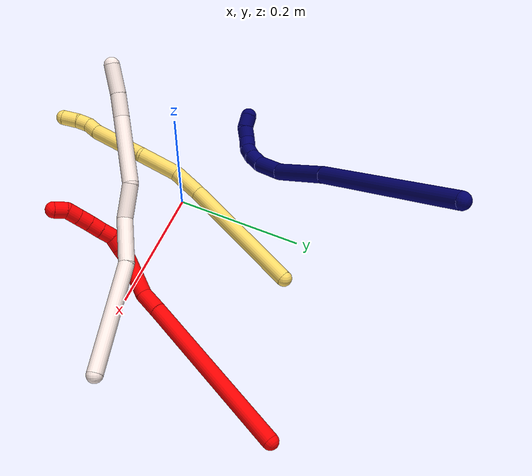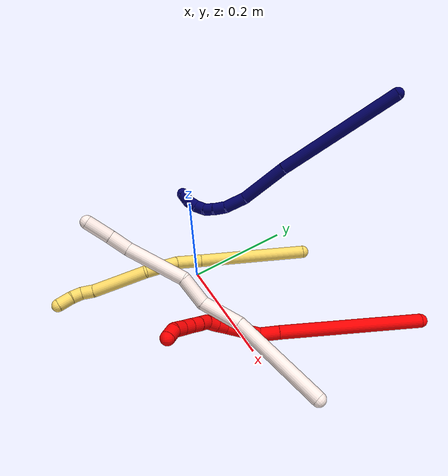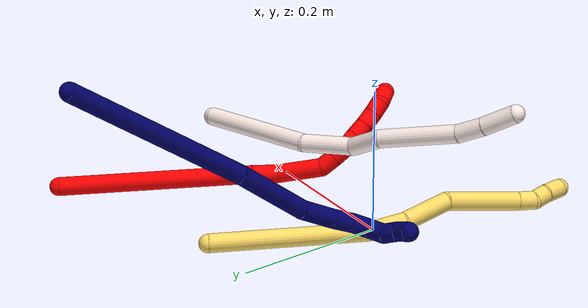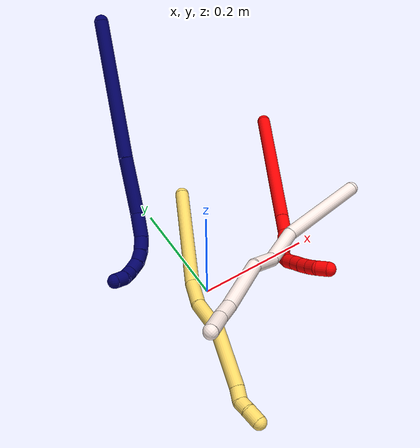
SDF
<sdf version="1.7">
 <world name="default">
  <model name="2">
   <static>0</static>
   <link name="2">
    <collision name="collision-cylinder-e_1_1_4">
     <pose>0.002531 0.002678 -0.130263 -3.12104 0.019425 -1.51424</pose>
     <geometry><cylinder><radius>0.0125</radius><length>0.260631</length></cylinder></geometry>
     <surface>
      <friction><ode><mu>1.16</mu><mu2>1.16</mu2><slip1>0</slip1><slip2>0</slip2></ode></friction>
      <contact><ode><kp>1e+06</kp><kd>1</kd><max_vel>0</max_vel><min_depth>0.001</min_depth></ode></contact>
     </surface>
    </collision>
    <visual name="visual-cylinder-e_1_1_4">
     <pose>0.002531 0.002678 -0.130263 -3.12104 0.019425 -1.51424</pose>
     <geometry><cylinder><radius>0.0125</radius><length>0.260631</length></cylinder></geometry>
     <material><ambient>1 0 0 1</ambient></material>
    </visual>
    <collision name="collision-cylinder-e_2_4_5">
     <pose>0.006159 0.005973 -0.278099 -3.10647 0.062278 -2.11487</pose>
     <geometry><cylinder><radius>0.0125</radius><length>0.035234</length></cylinder></geometry>
     <surface>
      <friction><ode><mu>1.16</mu><mu2>1.16</mu2><slip1>0</slip1><slip2>0</slip2></ode></friction>
      <contact><ode><kp>1e+06</kp><kd>1</kd><max_vel>0</max_vel><min_depth>0.001</min_depth></ode></contact>
     </surface>
    </collision>
    <visual name="visual-cylinder-e_2_4_5">
     <pose>0.006159 0.005973 -0.278099 -3.10647 0.062278 -2.11487</pose>
     <geometry><cylinder><radius>0.0125</radius><length>0.035234</length></cylinder></geometry>
     <material><ambient>1 0 0 1</ambient></material>
    </visual>
    <collision name="collision-cylinder-e_3_5_6">
     <pose>-0.001226 0.010085 -0.324978 -3.02292 -0.279804 2.34318</pose>
     <geometry><cylinder><radius>0.0125</radius><length>0.061418</length></cylinder></geometry>
     <surface>
      <friction><ode><mu>1.16</mu><mu2>1.16</mu2><slip1>0</slip1><slip2>0</slip2></ode></friction>
      <contact><ode><kp>1e+06</kp><kd>1</kd><max_vel>0</max_vel><min_depth>0.001</min_depth></ode></contact>
     </surface>
    </collision>
    <visual name="visual-cylinder-e_3_5_6">
     <pose>-0.001226 0.010085 -0.324978 -3.02292 -0.279804 2.34318</pose>
     <geometry><cylinder><radius>0.0125</radius><length>0.061418</length></cylinder></geometry>
     <material><ambient>1 0 0 1</ambient></material>
    </visual>
    <collision name="collision-cylinder-e_4_6_7">
     <pose>-0.014864 0.009798 -0.363417 2.74897 -0.480982 -1.77883</pose>
     <geometry><cylinder><radius>0.0125</radius><length>0.022296</length></cylinder></geometry>
     <surface>
      <friction><ode><mu>1.16</mu><mu2>1.16</mu2><slip1>0</slip1><slip2>0</slip2></ode></friction>
      <contact><ode><kp>1e+06</kp><kd>1</kd><max_vel>0</max_vel><min_depth>0.001</min_depth></ode></contact>
     </surface>
    </collision>
    <visual name="visual-cylinder-e_4_6_7">
     <pose>-0.014864 0.009798 -0.363417 2.74897 -0.480982 -1.77883</pose>
     <geometry><cylinder><radius>0.0125</radius><length>0.022296</length></cylinder></geometry>
     <material><ambient>1 0 0 1</ambient></material>
    </visual>
    <collision name="collision-cylinder-e_5_7_8">
     <pose>-0.025382 0.002486 -0.380393 2.71874 -0.557222 -1.85417</pose>
     <geometry><cylinder><radius>0.0125</radius><length>0.020273</length></cylinder></geometry>
     <surface>
      <friction><ode><mu>1.16</mu><mu2>1.16</mu2><slip1>0</slip1><slip2>0</slip2></ode></friction>
      <contact><ode><kp>1e+06</kp><kd>1</kd><max_vel>0</max_vel><min_depth>0.001</min_depth></ode></contact>
     </surface>
    </collision>
    <visual name="visual-cylinder-e_5_7_8">
     <pose>-0.025382 0.002486 -0.380393 2.71874 -0.557222 -1.85417</pose>
     <geometry><cylinder><radius>0.0125</radius><length>0.020273</length></cylinder></geometry>
     <material><ambient>1 0 0 1</ambient></material>
    </visual>
    <collision name="collision-cylinder-e_6_8_9">
     <pose>-0.033017 -0.00798 -0.395104 2.35109 -0.22893 -0.537782</pose>
     <geometry><cylinder><radius>0.0125</radius><length>0.020042</length></cylinder></geometry>
     <surface>
      <friction><ode><mu>1.16</mu><mu2>1.16</mu2><slip1>0</slip1><slip2>0</slip2></ode></friction>
      <contact><ode><kp>1e+06</kp><kd>1</kd><max_vel>0</max_vel><min_depth>0.001</min_depth></ode></contact>
     </surface>
    </collision>
    <visual name="visual-cylinder-e_6_8_9">
     <pose>-0.033017 -0.00798 -0.395104 2.35109 -0.22893 -0.537782</pose>
     <geometry><cylinder><radius>0.0125</radius><length>0.020042</length></cylinder></geometry>
     <material><ambient>1 0 0 1</ambient></material>
    </visual>
    <collision name="collision-cylinder-e_7_9_10">
     <pose>-0.037722 -0.021402 -0.409239 2.41315 -0.2446 -0.62378</pose>
     <geometry><cylinder><radius>0.0125</radius><length>0.020082</length></cylinder></geometry>
     <surface>
      <friction><ode><mu>1.16</mu><mu2>1.16</mu2><slip1>0</slip1><slip2>0</slip2></ode></friction>
      <contact><ode><kp>1e+06</kp><kd>1</kd><max_vel>0</max_vel><min_depth>0.001</min_depth></ode></contact>
     </surface>
    </collision>
    <visual name="visual-cylinder-e_7_9_10">
     <pose>-0.037722 -0.021402 -0.409239 2.41315 -0.2446 -0.62378</pose>
     <geometry><cylinder><radius>0.0125</radius><length>0.020082</length></cylinder></geometry>
     <material><ambient>1 0 0 1</ambient></material>
    </visual>
    <collision name="collision-cylinder-e_8_10_11">
     <pose>-0.042613 -0.034855 -0.423259 2.34034 -0.248255 -0.572974</pose>
     <geometry><cylinder><radius>0.0125</radius><length>0.020016</length></cylinder></geometry>
     <surface>
      <friction><ode><mu>1.16</mu><mu2>1.16</mu2><slip1>0</slip1><slip2>0</slip2></ode></friction>
      <contact><ode><kp>1e+06</kp><kd>1</kd><max_vel>0</max_vel><min_depth>0.001</min_depth></ode></contact>
     </surface>
    </collision>
    <visual name="visual-cylinder-e_8_10_11">
     <pose>-0.042613 -0.034855 -0.423259 2.34034 -0.248255 -0.572974</pose>
     <geometry><cylinder><radius>0.0125</radius><length>0.020016</length></cylinder></geometry>
     <material><ambient>1 0 0 1</ambient></material>
    </visual>
    <collision name="collision-cylinder-e_9_11_12">
     <pose>-0.047954 -0.049031 -0.436318 2.28971 -0.292216 -0.627262</pose>
     <geometry><cylinder><radius>0.0125</radius><length>0.020008</length></cylinder></geometry>
     <surface>
      <friction><ode><mu>1.16</mu><mu2>1.16</mu2><slip1>0</slip1><slip2>0</slip2></ode></friction>
      <contact><ode><kp>1e+06</kp><kd>1</kd><max_vel>0</max_vel><min_depth>0.001</min_depth></ode></contact>
     </surface>
    </collision>
    <visual name="visual-cylinder-e_9_11_12">
     <pose>-0.047954 -0.049031 -0.436318 2.28971 -0.292216 -0.627262</pose>
     <geometry><cylinder><radius>0.0125</radius><length>0.020008</length></cylinder></geometry>
     <material><ambient>1 0 0 1</ambient></material>
    </visual>
    <collision name="collision-cylinder-e_10_12_2">
     <pose>-0.049459 -0.065067 -0.447121 2.04166 0.138149 0.224753</pose>
     <geometry><cylinder><radius>0.0125</radius><length>0.02</length></cylinder></geometry>
     <surface>
      <friction><ode><mu>1.16</mu><mu2>1.16</mu2><slip1>0</slip1><slip2>0</slip2></ode></friction>
      <contact><ode><kp>1e+06</kp><kd>1</kd><max_vel>0</max_vel><min_depth>0.001</min_depth></ode></contact>
     </surface>
    </collision>
    <visual name="visual-cylinder-e_10_12_2">
     <pose>-0.049459 -0.065067 -0.447121 2.04166 0.138149 0.224753</pose>
     <geometry><cylinder><radius>0.0125</radius><length>0.02</length></cylinder></geometry>
     <material><ambient>1 0 0 1</ambient></material>
    </visual>
    <collision name="collision-sphere-2">
     <pose>-0.048082 -0.073894 -0.451614 0 -0 0</pose>
     <geometry><sphere><radius>0.0125</radius></sphere></geometry>
     <surface>
      <friction><ode><mu>1.16</mu><mu2>1.16</mu2><slip1>0</slip1><slip2>0</slip2></ode></friction>
      <contact><ode><kp>1e+06</kp><kd>1</kd><max_vel>0</max_vel><min_depth>0.001</min_depth></ode></contact>
     </surface>
    </collision>
    <visual name="visual-sphere-2">
     <pose>-0.048082 -0.073894 -0.451614 0 -0 0</pose>
     <geometry><sphere><radius>0.0125</radius></sphere></geometry>
     <material><ambient>1 0 0 1</ambient></material>
    </visual>
    <collision name="collision-sphere-12">
     <pose>-0.050836 -0.05624 -0.442627 0 -0 0</pose>
     <geometry><sphere><radius>0.0125</radius></sphere></geometry>
     <surface>
      <friction><ode><mu>1.16</mu><mu2>1.16</mu2><slip1>0</slip1><slip2>0</slip2></ode></friction>
      <contact><ode><kp>1e+06</kp><kd>1</kd><max_vel>0</max_vel><min_depth>0.001</min_depth></ode></contact>
     </surface>
    </collision>
    <visual name="visual-sphere-12">
     <pose>-0.050836 -0.05624 -0.442627 0 -0 0</pose>
     <geometry><sphere><radius>0.0125</radius></sphere></geometry>
     <material><ambient>1 0 0 1</ambient></material>
    </visual>
    <collision name="collision-sphere-11">
     <pose>-0.045072 -0.041822 -0.430009 0 -0 0</pose>
     <geometry><sphere><radius>0.0125</radius></sphere></geometry>
     <surface>
      <friction><ode><mu>1.16</mu><mu2>1.16</mu2><slip1>0</slip1><slip2>0</slip2></ode></friction>
      <contact><ode><kp>1e+06</kp><kd>1</kd><max_vel>0</max_vel><min_depth>0.001</min_depth></ode></contact>
     </surface>
    </collision>
    <visual name="visual-sphere-11">
     <pose>-0.045072 -0.041822 -0.430009 0 -0 0</pose>
     <geometry><sphere><radius>0.0125</radius></sphere></geometry>
     <material><ambient>1 0 0 1</ambient></material>
    </visual>
    <collision name="collision-sphere-10">
     <pose>-0.040154 -0.027887 -0.416509 0 -0 0</pose>
     <geometry><sphere><radius>0.0125</radius></sphere></geometry>
     <surface>
      <friction><ode><mu>1.16</mu><mu2>1.16</mu2><slip1>0</slip1><slip2>0</slip2></ode></friction>
      <contact><ode><kp>1e+06</kp><kd>1</kd><max_vel>0</max_vel><min_depth>0.001</min_depth></ode></contact>
     </surface>
    </collision>
    <visual name="visual-sphere-10">
     <pose>-0.040154 -0.027887 -0.416509 0 -0 0</pose>
     <geometry><sphere><radius>0.0125</radius></sphere></geometry>
     <material><ambient>1 0 0 1</ambient></material>
    </visual>
    <collision name="collision-sphere-9">
     <pose>-0.035291 -0.014916 -0.40197 0 -0 0</pose>
     <geometry><sphere><radius>0.0125</radius></sphere></geometry>
     <surface>
      <friction><ode><mu>1.16</mu><mu2>1.16</mu2><slip1>0</slip1><slip2>0</slip2></ode></friction>
      <contact><ode><kp>1e+06</kp><kd>1</kd><max_vel>0</max_vel><min_depth>0.001</min_depth></ode></contact>
     </surface>
    </collision>
    <visual name="visual-sphere-9">
     <pose>-0.035291 -0.014916 -0.40197 0 -0 0</pose>
     <geometry><sphere><radius>0.0125</radius></sphere></geometry>
     <material><ambient>1 0 0 1</ambient></material>
    </visual>
    <collision name="collision-sphere-4">
     <pose>0.005062 0.005356 -0.260527 0 -0 0</pose>
     <geometry><sphere><radius>0.0125</radius></sphere></geometry>
     <surface>
      <friction><ode><mu>1.16</mu><mu2>1.16</mu2><slip1>0</slip1><slip2>0</slip2></ode></friction>
      <contact><ode><kp>1e+06</kp><kd>1</kd><max_vel>0</max_vel><min_depth>0.001</min_depth></ode></contact>
     </surface>
    </collision>
    <visual name="visual-sphere-4">
     <pose>0.005062 0.005356 -0.260527 0 -0 0</pose>
     <geometry><sphere><radius>0.0125</radius></sphere></geometry>
     <material><ambient>1 0 0 1</ambient></material>
    </visual>
    <collision name="collision-sphere-1">
     <geometry><sphere><radius>0.0125</radius></sphere></geometry>
     <surface>
      <friction><ode><mu>1.16</mu><mu2>1.16</mu2><slip1>0</slip1><slip2>0</slip2></ode></friction>
      <contact><ode><kp>1e+06</kp><kd>1</kd><max_vel>0</max_vel><min_depth>0.001</min_depth></ode></contact>
     </surface>
    </collision>
    <visual name="visual-sphere-1">
     <geometry><sphere><radius>0.0125</radius></sphere></geometry>
     <material><ambient>1 0 0 1</ambient></material>
    </visual>
    <collision name="collision-sphere-8">
     <pose>-0.030743 -0.001044 -0.388238 0 -0 0</pose>
     <geometry><sphere><radius>0.0125</radius></sphere></geometry>
     <surface>
      <friction><ode><mu>1.16</mu><mu2>1.16</mu2><slip1>0</slip1><slip2>0</slip2></ode></friction>
      <contact><ode><kp>1e+06</kp><kd>1</kd><max_vel>0</max_vel><min_depth>0.001</min_depth></ode></contact>
     </surface>
    </collision>
    <visual name="visual-sphere-8">
     <pose>-0.030743 -0.001044 -0.388238 0 -0 0</pose>
     <geometry><sphere><radius>0.0125</radius></sphere></geometry>
     <material><ambient>1 0 0 1</ambient></material>
    </visual>
    <collision name="collision-sphere-5">
     <pose>0.007255 0.006591 -0.295671 0 -0 0</pose>
     <geometry><sphere><radius>0.0125</radius></sphere></geometry>
     <surface>
      <friction><ode><mu>1.16</mu><mu2>1.16</mu2><slip1>0</slip1><slip2>0</slip2></ode></friction>
      <contact><ode><kp>1e+06</kp><kd>1</kd><max_vel>0</max_vel><min_depth>0.001</min_depth></ode></contact>
     </surface>
    </collision>
    <visual name="visual-sphere-5">
     <pose>0.007255 0.006591 -0.295671 0 -0 0</pose>
     <geometry><sphere><radius>0.0125</radius></sphere></geometry>
     <material><ambient>1 0 0 1</ambient></material>
    </visual>
    <collision name="collision-sphere-6">
     <pose>-0.009706 0.01358 -0.354285 0 -0 0</pose>
     <geometry><sphere><radius>0.0125</radius></sphere></geometry>
     <surface>
      <friction><ode><mu>1.16</mu><mu2>1.16</mu2><slip1>0</slip1><slip2>0</slip2></ode></friction>
      <contact><ode><kp>1e+06</kp><kd>1</kd><max_vel>0</max_vel><min_depth>0.001</min_depth></ode></contact>
     </surface>
    </collision>
    <visual name="visual-sphere-6">
     <pose>-0.009706 0.01358 -0.354285 0 -0 0</pose>
     <geometry><sphere><radius>0.0125</radius></sphere></geometry>
     <material><ambient>1 0 0 1</ambient></material>
    </visual>
    <collision name="collision-sphere-7">
     <pose>-0.020022 0.006017 -0.372548 0 -0 0</pose>
     <geometry><sphere><radius>0.0125</radius></sphere></geometry>
     <surface>
      <friction><ode><mu>1.16</mu><mu2>1.16</mu2><slip1>0</slip1><slip2>0</slip2></ode></friction>
      <contact><ode><kp>1e+06</kp><kd>1</kd><max_vel>0</max_vel><min_depth>0.001</min_depth></ode></contact>
     </surface>
    </collision>
    <visual name="visual-sphere-7">
     <pose>-0.020022 0.006017 -0.372548 0 -0 0</pose>
     <geometry><sphere><radius>0.0125</radius></sphere></geometry>
     <material><ambient>1 0 0 1</ambient></material>
    </visual>
    <inertial>
     <pose>-0.008531 -0.003546 -0.243609 0 -0 0</pose>
     <mass>0.5</mass>
     <inertia>
      <ixx>-0.001409</ixx>
      <ixy>0</ixy>
      <ixz>0</ixz>
      <iyy>-0.001551</iyy>
      <iyz>0</iyz>
      <izz>-8.2e-05</izz>
     </inertia>
    </inertial>
   </link>
   <pose>0.32009 0.288168 0.012486 -1.62957 1.05534 -0.51936</pose>
  </model>
  <model name="5">
   <static>0</static>
   <link name="5">
    <collision name="collision-cylinder-e_1_1_4">
     <pose>-0.054899 -0.082413 0.034312 1.17628 -0.551353 -0.372903</pose>
     <geometry><cylinder><radius>0.0125</radius><length>0.209601</length></cylinder></geometry>
     <surface>
      <friction><ode><mu>1.16</mu><mu2>1.16</mu2><slip1>0</slip1><slip2>0</slip2></ode></friction>
      <contact><ode><kp>1e+06</kp><kd>1</kd><max_vel>0</max_vel><min_depth>0.001</min_depth></ode></contact>
     </surface>
    </collision>
    <visual name="visual-cylinder-e_1_1_4">
     <pose>-0.054899 -0.082413 0.034312 1.17628 -0.551353 -0.372903</pose>
     <geometry><cylinder><radius>0.0125</radius><length>0.209601</length></cylinder></geometry>
     <material><ambient>1 0.858824 0.4 1</ambient></material>
    </visual>
    <collision name="collision-cylinder-e_2_4_5">
     <pose>-0.118528 -0.186004 0.079052 1.11323 -0.354238 -0.221843</pose>
     <geometry><cylinder><radius>0.0125</radius><length>0.050336</length></cylinder></geometry>
     <surface>
      <friction><ode><mu>1.16</mu><mu2>1.16</mu2><slip1>0</slip1><slip2>0</slip2></ode></friction>
      <contact><ode><kp>1e+06</kp><kd>1</kd><max_vel>0</max_vel><min_depth>0.001</min_depth></ode></contact>
     </surface>
    </collision>
    <visual name="visual-cylinder-e_2_4_5">
     <pose>-0.118528 -0.186004 0.079052 1.11323 -0.354238 -0.221843</pose>
     <geometry><cylinder><radius>0.0125</radius><length>0.050336</length></cylinder></geometry>
     <material><ambient>1 0.858824 0.4 1</ambient></material>
    </visual>
    <collision name="collision-cylinder-e_3_5_6">
     <pose>-0.131169 -0.238379 0.0992 1.26876 -0.119135 -0.087713</pose>
     <geometry><cylinder><radius>0.0125</radius><length>0.065822</length></cylinder></geometry>
     <surface>
      <friction><ode><mu>1.16</mu><mu2>1.16</mu2><slip1>0</slip1><slip2>0</slip2></ode></friction>
      <contact><ode><kp>1e+06</kp><kd>1</kd><max_vel>0</max_vel><min_depth>0.001</min_depth></ode></contact>
     </surface>
    </collision>
    <visual name="visual-cylinder-e_3_5_6">
     <pose>-0.131169 -0.238379 0.0992 1.26876 -0.119135 -0.087713</pose>
     <geometry><cylinder><radius>0.0125</radius><length>0.065822</length></cylinder></geometry>
     <material><ambient>1 0.858824 0.4 1</ambient></material>
    </visual>
    <collision name="collision-cylinder-e_4_6_7">
     <pose>-0.159245 -0.315418 0.11331 1.47534 -0.483238 -0.440659</pose>
     <geometry><cylinder><radius>0.0125</radius><length>0.10401</length></cylinder></geometry>
     <surface>
      <friction><ode><mu>1.16</mu><mu2>1.16</mu2><slip1>0</slip1><slip2>0</slip2></ode></friction>
      <contact><ode><kp>1e+06</kp><kd>1</kd><max_vel>0</max_vel><min_depth>0.001</min_depth></ode></contact>
     </surface>
    </collision>
    <visual name="visual-cylinder-e_4_6_7">
     <pose>-0.159245 -0.315418 0.11331 1.47534 -0.483238 -0.440659</pose>
     <geometry><cylinder><radius>0.0125</radius><length>0.10401</length></cylinder></geometry>
     <material><ambient>1 0.858824 0.4 1</ambient></material>
    </visual>
    <collision name="collision-cylinder-e_5_7_8">
     <pose>-0.189338 -0.371095 0.120576 1.28621 -0.524406 -0.396945</pose>
     <geometry><cylinder><radius>0.0125</radius><length>0.02368</length></cylinder></geometry>
     <surface>
      <friction><ode><mu>1.16</mu><mu2>1.16</mu2><slip1>0</slip1><slip2>0</slip2></ode></friction>
      <contact><ode><kp>1e+06</kp><kd>1</kd><max_vel>0</max_vel><min_depth>0.001</min_depth></ode></contact>
     </surface>
    </collision>
    <visual name="visual-cylinder-e_5_7_8">
     <pose>-0.189338 -0.371095 0.120576 1.28621 -0.524406 -0.396945</pose>
     <geometry><cylinder><radius>0.0125</radius><length>0.02368</length></cylinder></geometry>
     <material><ambient>1 0.858824 0.4 1</ambient></material>
    </visual>
    <collision name="collision-cylinder-e_6_8_9">
     <pose>-0.195503 -0.39076 0.125561 1.35958 -0.023585 -0.019064</pose>
     <geometry><cylinder><radius>0.0125</radius><length>0.020108</length></cylinder></geometry>
     <surface>
      <friction><ode><mu>1.16</mu><mu2>1.16</mu2><slip1>0</slip1><slip2>0</slip2></ode></friction>
      <contact><ode><kp>1e+06</kp><kd>1</kd><max_vel>0</max_vel><min_depth>0.001</min_depth></ode></contact>
     </surface>
    </collision>
    <visual name="visual-cylinder-e_6_8_9">
     <pose>-0.195503 -0.39076 0.125561 1.35958 -0.023585 -0.019064</pose>
     <geometry><cylinder><radius>0.0125</radius><length>0.020108</length></cylinder></geometry>
     <material><ambient>1 0.858824 0.4 1</ambient></material>
    </visual>
    <collision name="collision-cylinder-e_7_9_2">
     <pose>-0.196844 -0.41375 0.128246 1.52691 -0.083583 -0.079998</pose>
     <geometry><cylinder><radius>0.0125</radius><length>0.026443</length></cylinder></geometry>
     <surface>
      <friction><ode><mu>1.16</mu><mu2>1.16</mu2><slip1>0</slip1><slip2>0</slip2></ode></friction>
      <contact><ode><kp>1e+06</kp><kd>1</kd><max_vel>0</max_vel><min_depth>0.001</min_depth></ode></contact>
     </surface>
    </collision>
    <visual name="visual-cylinder-e_7_9_2">
     <pose>-0.196844 -0.41375 0.128246 1.52691 -0.083583 -0.079998</pose>
     <geometry><cylinder><radius>0.0125</radius><length>0.026443</length></cylinder></geometry>
     <material><ambient>1 0.858824 0.4 1</ambient></material>
    </visual>
    <collision name="collision-sphere-2">
     <pose>-0.197948 -0.426913 0.128824 0 -0 0</pose>
     <geometry><sphere><radius>0.0125</radius></sphere></geometry>
     <surface>
      <friction><ode><mu>1.16</mu><mu2>1.16</mu2><slip1>0</slip1><slip2>0</slip2></ode></friction>
      <contact><ode><kp>1e+06</kp><kd>1</kd><max_vel>0</max_vel><min_depth>0.001</min_depth></ode></contact>
     </surface>
    </collision>
    <visual name="visual-sphere-2">
     <pose>-0.197948 -0.426913 0.128824 0 -0 0</pose>
     <geometry><sphere><radius>0.0125</radius></sphere></geometry>
     <material><ambient>1 0.858824 0.4 1</ambient></material>
    </visual>
    <collision name="collision-sphere-9">
     <pose>-0.19574 -0.400587 0.127668 0 -0 0</pose>
     <geometry><sphere><radius>0.0125</radius></sphere></geometry>
     <surface>
      <friction><ode><mu>1.16</mu><mu2>1.16</mu2><slip1>0</slip1><slip2>0</slip2></ode></friction>
      <contact><ode><kp>1e+06</kp><kd>1</kd><max_vel>0</max_vel><min_depth>0.001</min_depth></ode></contact>
     </surface>
    </collision>
    <visual name="visual-sphere-9">
     <pose>-0.19574 -0.400587 0.127668 0 -0 0</pose>
     <geometry><sphere><radius>0.0125</radius></sphere></geometry>
     <material><ambient>1 0.858824 0.4 1</ambient></material>
    </visual>
    <collision name="collision-sphere-4">
     <pose>-0.109798 -0.164827 0.068624 0 -0 0</pose>
     <geometry><sphere><radius>0.0125</radius></sphere></geometry>
     <surface>
      <friction><ode><mu>1.16</mu><mu2>1.16</mu2><slip1>0</slip1><slip2>0</slip2></ode></friction>
      <contact><ode><kp>1e+06</kp><kd>1</kd><max_vel>0</max_vel><min_depth>0.001</min_depth></ode></contact>
     </surface>
    </collision>
    <visual name="visual-sphere-4">
     <pose>-0.109798 -0.164827 0.068624 0 -0 0</pose>
     <geometry><sphere><radius>0.0125</radius></sphere></geometry>
     <material><ambient>1 0.858824 0.4 1</ambient></material>
    </visual>
    <collision name="collision-sphere-1">
     <geometry><sphere><radius>0.0125</radius></sphere></geometry>
     <surface>
      <friction><ode><mu>1.16</mu><mu2>1.16</mu2><slip1>0</slip1><slip2>0</slip2></ode></friction>
      <contact><ode><kp>1e+06</kp><kd>1</kd><max_vel>0</max_vel><min_depth>0.001</min_depth></ode></contact>
     </surface>
    </collision>
    <visual name="visual-sphere-1">
     <geometry><sphere><radius>0.0125</radius></sphere></geometry>
     <material><ambient>1 0.858824 0.4 1</ambient></material>
    </visual>
    <collision name="collision-sphere-8">
     <pose>-0.195266 -0.380932 0.123454 0 -0 0</pose>
     <geometry><sphere><radius>0.0125</radius></sphere></geometry>
     <surface>
      <friction><ode><mu>1.16</mu><mu2>1.16</mu2><slip1>0</slip1><slip2>0</slip2></ode></friction>
      <contact><ode><kp>1e+06</kp><kd>1</kd><max_vel>0</max_vel><min_depth>0.001</min_depth></ode></contact>
     </surface>
    </collision>
    <visual name="visual-sphere-8">
     <pose>-0.195266 -0.380932 0.123454 0 -0 0</pose>
     <geometry><sphere><radius>0.0125</radius></sphere></geometry>
     <material><ambient>1 0.858824 0.4 1</ambient></material>
    </visual>
    <collision name="collision-sphere-5">
     <pose>-0.127258 -0.207181 0.08948 0 -0 0</pose>
     <geometry><sphere><radius>0.0125</radius></sphere></geometry>
     <surface>
      <friction><ode><mu>1.16</mu><mu2>1.16</mu2><slip1>0</slip1><slip2>0</slip2></ode></friction>
      <contact><ode><kp>1e+06</kp><kd>1</kd><max_vel>0</max_vel><min_depth>0.001</min_depth></ode></contact>
     </surface>
    </collision>
    <visual name="visual-sphere-5">
     <pose>-0.127258 -0.207181 0.08948 0 -0 0</pose>
     <geometry><sphere><radius>0.0125</radius></sphere></geometry>
     <material><ambient>1 0.858824 0.4 1</ambient></material>
    </visual>
    <collision name="collision-sphere-6">
     <pose>-0.135081 -0.269577 0.108921 0 -0 0</pose>
     <geometry><sphere><radius>0.0125</radius></sphere></geometry>
     <surface>
      <friction><ode><mu>1.16</mu><mu2>1.16</mu2><slip1>0</slip1><slip2>0</slip2></ode></friction>
      <contact><ode><kp>1e+06</kp><kd>1</kd><max_vel>0</max_vel><min_depth>0.001</min_depth></ode></contact>
     </surface>
    </collision>
    <visual name="visual-sphere-6">
     <pose>-0.135081 -0.269577 0.108921 0 -0 0</pose>
     <geometry><sphere><radius>0.0125</radius></sphere></geometry>
     <material><ambient>1 0.858824 0.4 1</ambient></material>
    </visual>
    <collision name="collision-sphere-7">
     <pose>-0.183409 -0.361259 0.117699 0 -0 0</pose>
     <geometry><sphere><radius>0.0125</radius></sphere></geometry>
     <surface>
      <friction><ode><mu>1.16</mu><mu2>1.16</mu2><slip1>0</slip1><slip2>0</slip2></ode></friction>
      <contact><ode><kp>1e+06</kp><kd>1</kd><max_vel>0</max_vel><min_depth>0.001</min_depth></ode></contact>
     </surface>
    </collision>
    <visual name="visual-sphere-7">
     <pose>-0.183409 -0.361259 0.117699 0 -0 0</pose>
     <geometry><sphere><radius>0.0125</radius></sphere></geometry>
     <material><ambient>1 0.858824 0.4 1</ambient></material>
    </visual>
    <inertial>
     <pose>-0.11258 -0.205439 0.076514 0 -0 0</pose>
     <mass>0.5</mass>
     <inertia>
      <ixx>0.000438</ixx>
      <ixy>0</ixy>
      <ixz>0</ixz>
      <iyy>0.000141</iyy>
      <iyz>0</iyz>
      <izz>0.001208</izz>
     </inertia>
    </inertial>
   </link>
   <pose>0.074202 0.208448 0.0125 0.021072 -0.537205 0.196681</pose>
  </model>
  <model name="7">
   <static>0</static>
   <link name="7">
    <collision name="collision-cylinder-e_1_1_4">
     <pose>0.004235 -0.000781 -0.124133 3.1353 0.034105 2.77697</pose>
     <geometry><cylinder><radius>0.0125</radius><length>0.248416</length></cylinder></geometry>
     <surface>
      <friction><ode><mu>1.16</mu><mu2>1.16</mu2><slip1>0</slip1><slip2>0</slip2></ode></friction>
      <contact><ode><kp>1e+06</kp><kd>1</kd><max_vel>0</max_vel><min_depth>0.001</min_depth></ode></contact>
     </surface>
    </collision>
    <visual name="visual-cylinder-e_1_1_4">
     <pose>0.004235 -0.000781 -0.124133 3.1353 0.034105 2.77697</pose>
     <geometry><cylinder><radius>0.0125</radius><length>0.248416</length></cylinder></geometry>
     <material><ambient>0.003922 0 0.403922 1</ambient></material>
    </visual>
    <collision name="collision-cylinder-e_2_4_5">
     <pose>0.014077 -0.000979 -0.297761 -3.12982 0.112791 -2.93386</pose>
     <geometry><cylinder><radius>0.0125</radius><length>0.099629</length></cylinder></geometry>
     <surface>
      <friction><ode><mu>1.16</mu><mu2>1.16</mu2><slip1>0</slip1><slip2>0</slip2></ode></friction>
      <contact><ode><kp>1e+06</kp><kd>1</kd><max_vel>0</max_vel><min_depth>0.001</min_depth></ode></contact>
     </surface>
    </collision>
    <visual name="visual-cylinder-e_2_4_5">
     <pose>0.014077 -0.000979 -0.297761 -3.12982 0.112791 -2.93386</pose>
     <geometry><cylinder><radius>0.0125</radius><length>0.099629</length></cylinder></geometry>
     <material><ambient>0.003922 0 0.403922 1</ambient></material>
    </visual>
    <collision name="collision-cylinder-e_3_5_6">
     <pose>0.017253 -0.00241 -0.369088 3.0496 -0.110447 -1.75296</pose>
     <geometry><cylinder><radius>0.0125</radius><length>0.044118</length></cylinder></geometry>
     <surface>
      <friction><ode><mu>1.16</mu><mu2>1.16</mu2><slip1>0</slip1><slip2>0</slip2></ode></friction>
      <contact><ode><kp>1e+06</kp><kd>1</kd><max_vel>0</max_vel><min_depth>0.001</min_depth></ode></contact>
     </surface>
    </collision>
    <visual name="visual-cylinder-e_3_5_6">
     <pose>0.017253 -0.00241 -0.369088 3.0496 -0.110447 -1.75296</pose>
     <geometry><cylinder><radius>0.0125</radius><length>0.044118</length></cylinder></geometry>
     <material><ambient>0.003922 0 0.403922 1</ambient></material>
    </visual>
    <collision name="collision-cylinder-e_4_6_7">
     <pose>0.010395 -0.004606 -0.402567 3.12598 -0.363114 -3.05658</pose>
     <geometry><cylinder><radius>0.0125</radius><length>0.024921</length></cylinder></geometry>
     <surface>
      <friction><ode><mu>1.16</mu><mu2>1.16</mu2><slip1>0</slip1><slip2>0</slip2></ode></friction>
      <contact><ode><kp>1e+06</kp><kd>1</kd><max_vel>0</max_vel><min_depth>0.001</min_depth></ode></contact>
     </surface>
    </collision>
    <visual name="visual-cylinder-e_4_6_7">
     <pose>0.010395 -0.004606 -0.402567 3.12598 -0.363114 -3.05658</pose>
     <geometry><cylinder><radius>0.0125</radius><length>0.024921</length></cylinder></geometry>
     <material><ambient>0.003922 0 0.403922 1</ambient></material>
    </visual>
    <collision name="collision-cylinder-e_5_7_8">
     <pose>0.001452 -0.002964 -0.423122 -2.93968 -0.461105 2.32676</pose>
     <geometry><cylinder><radius>0.0125</radius><length>0.020309</length></cylinder></geometry>
     <surface>
      <friction><ode><mu>1.16</mu><mu2>1.16</mu2><slip1>0</slip1><slip2>0</slip2></ode></friction>
      <contact><ode><kp>1e+06</kp><kd>1</kd><max_vel>0</max_vel><min_depth>0.001</min_depth></ode></contact>
     </surface>
    </collision>
    <visual name="visual-cylinder-e_5_7_8">
     <pose>0.001452 -0.002964 -0.423122 -2.93968 -0.461105 2.32676</pose>
     <geometry><cylinder><radius>0.0125</radius><length>0.020309</length></cylinder></geometry>
     <material><ambient>0.003922 0 0.403922 1</ambient></material>
    </visual>
    <collision name="collision-cylinder-e_6_8_9">
     <pose>-0.010029 0.002649 -0.439316 -2.6619 -0.703261 1.9657</pose>
     <geometry><cylinder><radius>0.0125</radius><length>0.021533</length></cylinder></geometry>
     <surface>
      <friction><ode><mu>1.16</mu><mu2>1.16</mu2><slip1>0</slip1><slip2>0</slip2></ode></friction>
      <contact><ode><kp>1e+06</kp><kd>1</kd><max_vel>0</max_vel><min_depth>0.001</min_depth></ode></contact>
     </surface>
    </collision>
    <visual name="visual-cylinder-e_6_8_9">
     <pose>-0.010029 0.002649 -0.439316 -2.6619 -0.703261 1.9657</pose>
     <geometry><cylinder><radius>0.0125</radius><length>0.021533</length></cylinder></geometry>
     <material><ambient>0.003922 0 0.403922 1</ambient></material>
    </visual>
    <collision name="collision-cylinder-e_7_9_10">
     <pose>-0.026076 0.006744 -0.451213 -3.07563 -1.10021 3.03409</pose>
     <geometry><cylinder><radius>0.0125</radius><length>0.020385</length></cylinder></geometry>
     <surface>
      <friction><ode><mu>1.16</mu><mu2>1.16</mu2><slip1>0</slip1><slip2>0</slip2></ode></friction>
      <contact><ode><kp>1e+06</kp><kd>1</kd><max_vel>0</max_vel><min_depth>0.001</min_depth></ode></contact>
     </surface>
    </collision>
    <visual name="visual-cylinder-e_7_9_10">
     <pose>-0.026076 0.006744 -0.451213 -3.07563 -1.10021 3.03409</pose>
     <geometry><cylinder><radius>0.0125</radius><length>0.020385</length></cylinder></geometry>
     <material><ambient>0.003922 0 0.403922 1</ambient></material>
    </visual>
    <collision name="collision-cylinder-e_8_10_2">
     <pose>-0.044667 0.010632 -0.457774 -2.06909 -1.16538 1.67392</pose>
     <geometry><cylinder><radius>0.0125</radius><length>0.020689</length></cylinder></geometry>
     <surface>
      <friction><ode><mu>1.16</mu><mu2>1.16</mu2><slip1>0</slip1><slip2>0</slip2></ode></friction>
      <contact><ode><kp>1e+06</kp><kd>1</kd><max_vel>0</max_vel><min_depth>0.001</min_depth></ode></contact>
     </surface>
    </collision>
    <visual name="visual-cylinder-e_8_10_2">
     <pose>-0.044667 0.010632 -0.457774 -2.06909 -1.16538 1.67392</pose>
     <geometry><cylinder><radius>0.0125</radius><length>0.020689</length></cylinder></geometry>
     <material><ambient>0.003922 0 0.403922 1</ambient></material>
    </visual>
    <collision name="collision-sphere-2">
     <pose>-0.054173 0.014216 -0.459724 0 -0 0</pose>
     <geometry><sphere><radius>0.0125</radius></sphere></geometry>
     <surface>
      <friction><ode><mu>1.16</mu><mu2>1.16</mu2><slip1>0</slip1><slip2>0</slip2></ode></friction>
      <contact><ode><kp>1e+06</kp><kd>1</kd><max_vel>0</max_vel><min_depth>0.001</min_depth></ode></contact>
     </surface>
    </collision>
    <visual name="visual-sphere-2">
     <pose>-0.054173 0.014216 -0.459724 0 -0 0</pose>
     <geometry><sphere><radius>0.0125</radius></sphere></geometry>
     <material><ambient>0.003922 0 0.403922 1</ambient></material>
    </visual>
    <collision name="collision-sphere-10">
     <pose>-0.035161 0.007048 -0.455824 0 -0 0</pose>
     <geometry><sphere><radius>0.0125</radius></sphere></geometry>
     <surface>
      <friction><ode><mu>1.16</mu><mu2>1.16</mu2><slip1>0</slip1><slip2>0</slip2></ode></friction>
      <contact><ode><kp>1e+06</kp><kd>1</kd><max_vel>0</max_vel><min_depth>0.001</min_depth></ode></contact>
     </surface>
    </collision>
    <visual name="visual-sphere-10">
     <pose>-0.035161 0.007048 -0.455824 0 -0 0</pose>
     <geometry><sphere><radius>0.0125</radius></sphere></geometry>
     <material><ambient>0.003922 0 0.403922 1</ambient></material>
    </visual>
    <collision name="collision-sphere-9">
     <pose>-0.016992 0.006439 -0.446601 0 -0 0</pose>
     <geometry><sphere><radius>0.0125</radius></sphere></geometry>
     <surface>
      <friction><ode><mu>1.16</mu><mu2>1.16</mu2><slip1>0</slip1><slip2>0</slip2></ode></friction>
      <contact><ode><kp>1e+06</kp><kd>1</kd><max_vel>0</max_vel><min_depth>0.001</min_depth></ode></contact>
     </surface>
    </collision>
    <visual name="visual-sphere-9">
     <pose>-0.016992 0.006439 -0.446601 0 -0 0</pose>
     <geometry><sphere><radius>0.0125</radius></sphere></geometry>
     <material><ambient>0.003922 0 0.403922 1</ambient></material>
    </visual>
    <collision name="collision-sphere-4">
     <pose>0.008471 -0.001561 -0.248267 0 -0 0</pose>
     <geometry><sphere><radius>0.0125</radius></sphere></geometry>
     <surface>
      <friction><ode><mu>1.16</mu><mu2>1.16</mu2><slip1>0</slip1><slip2>0</slip2></ode></friction>
      <contact><ode><kp>1e+06</kp><kd>1</kd><max_vel>0</max_vel><min_depth>0.001</min_depth></ode></contact>
     </surface>
    </collision>
    <visual name="visual-sphere-4">
     <pose>0.008471 -0.001561 -0.248267 0 -0 0</pose>
     <geometry><sphere><radius>0.0125</radius></sphere></geometry>
     <material><ambient>0.003922 0 0.403922 1</ambient></material>
    </visual>
    <collision name="collision-sphere-1">
     <geometry><sphere><radius>0.0125</radius></sphere></geometry>
     <surface>
      <friction><ode><mu>1.16</mu><mu2>1.16</mu2><slip1>0</slip1><slip2>0</slip2></ode></friction>
      <contact><ode><kp>1e+06</kp><kd>1</kd><max_vel>0</max_vel><min_depth>0.001</min_depth></ode></contact>
     </surface>
    </collision>
    <visual name="visual-sphere-1">
     <geometry><sphere><radius>0.0125</radius></sphere></geometry>
     <material><ambient>0.003922 0 0.403922 1</ambient></material>
    </visual>
    <collision name="collision-sphere-8">
     <pose>-0.003066 -0.00114 -0.432031 0 -0 0</pose>
     <geometry><sphere><radius>0.0125</radius></sphere></geometry>
     <surface>
      <friction><ode><mu>1.16</mu><mu2>1.16</mu2><slip1>0</slip1><slip2>0</slip2></ode></friction>
      <contact><ode><kp>1e+06</kp><kd>1</kd><max_vel>0</max_vel><min_depth>0.001</min_depth></ode></contact>
     </surface>
    </collision>
    <visual name="visual-sphere-8">
     <pose>-0.003066 -0.00114 -0.432031 0 -0 0</pose>
     <geometry><sphere><radius>0.0125</radius></sphere></geometry>
     <material><ambient>0.003922 0 0.403922 1</ambient></material>
    </visual>
    <collision name="collision-sphere-5">
     <pose>0.019684 -0.000396 -0.347256 0 -0 0</pose>
     <geometry><sphere><radius>0.0125</radius></sphere></geometry>
     <surface>
      <friction><ode><mu>1.16</mu><mu2>1.16</mu2><slip1>0</slip1><slip2>0</slip2></ode></friction>
      <contact><ode><kp>1e+06</kp><kd>1</kd><max_vel>0</max_vel><min_depth>0.001</min_depth></ode></contact>
     </surface>
    </collision>
    <visual name="visual-sphere-5">
     <pose>0.019684 -0.000396 -0.347256 0 -0 0</pose>
     <geometry><sphere><radius>0.0125</radius></sphere></geometry>
     <material><ambient>0.003922 0 0.403922 1</ambient></material>
    </visual>
    <collision name="collision-sphere-6">
     <pose>0.014821 -0.004424 -0.39092 0 -0 0</pose>
     <geometry><sphere><radius>0.0125</radius></sphere></geometry>
     <surface>
      <friction><ode><mu>1.16</mu><mu2>1.16</mu2><slip1>0</slip1><slip2>0</slip2></ode></friction>
      <contact><ode><kp>1e+06</kp><kd>1</kd><max_vel>0</max_vel><min_depth>0.001</min_depth></ode></contact>
     </surface>
    </collision>
    <visual name="visual-sphere-6">
     <pose>0.014821 -0.004424 -0.39092 0 -0 0</pose>
     <geometry><sphere><radius>0.0125</radius></sphere></geometry>
     <material><ambient>0.003922 0 0.403922 1</ambient></material>
    </visual>
    <collision name="collision-sphere-7">
     <pose>0.00597 -0.004788 -0.414213 0 -0 0</pose>
     <geometry><sphere><radius>0.0125</radius></sphere></geometry>
     <surface>
      <friction><ode><mu>1.16</mu><mu2>1.16</mu2><slip1>0</slip1><slip2>0</slip2></ode></friction>
      <contact><ode><kp>1e+06</kp><kd>1</kd><max_vel>0</max_vel><min_depth>0.001</min_depth></ode></contact>
     </surface>
    </collision>
    <visual name="visual-sphere-7">
     <pose>0.00597 -0.004788 -0.414213 0 -0 0</pose>
     <geometry><sphere><radius>0.0125</radius></sphere></geometry>
     <material><ambient>0.003922 0 0.403922 1</ambient></material>
    </visual>
    <inertial>
     <pose>0.003665 -0.000316 -0.24708 0 -0 0</pose>
     <mass>0.5</mass>
     <inertia>
      <ixx>-0.000861</ixx>
      <ixy>0</ixy>
      <ixz>0</ixz>
      <iyy>0.001732</iyy>
      <iyz>0</iyz>
      <izz>-7.7e-05</izz>
     </inertia>
    </inertial>
   </link>
   <pose>0.043676 0.416095 0.296739 -0.747794 0.752214 0.256688</pose>
  </model>
  <model name="11">
   <static>0</static>
   <link name="11">
    <collision name="collision-cylinder-e_1_1_4">
     <pose>-0.085565 -0.017662 0.004051 1.34534 -1.3621 -1.14651</pose>
     <geometry><cylinder><radius>0.0125</radius><length>0.174925</length></cylinder></geometry>
     <surface>
      <friction><ode><mu>1.16</mu><mu2>1.16</mu2><slip1>0</slip1><slip2>0</slip2></ode></friction>
      <contact><ode><kp>1e+06</kp><kd>1</kd><max_vel>0</max_vel><min_depth>0.001</min_depth></ode></contact>
     </surface>
    </collision>
    <visual name="visual-cylinder-e_1_1_4">
     <pose>-0.085565 -0.017662 0.004051 1.34534 -1.3621 -1.14651</pose>
     <geometry><cylinder><radius>0.0125</radius><length>0.174925</length></cylinder></geometry>
     <material><ambient>1 0.933333 0.909804 1</ambient></material>
    </visual>
    <collision name="collision-cylinder-e_2_4_5">
     <pose>-0.205213 -0.046549 6.4e-05 2.19223 -1.18594 -1.83859</pose>
     <geometry><cylinder><radius>0.0125</radius><length>0.073548</length></cylinder></geometry>
     <surface>
      <friction><ode><mu>1.16</mu><mu2>1.16</mu2><slip1>0</slip1><slip2>0</slip2></ode></friction>
      <contact><ode><kp>1e+06</kp><kd>1</kd><max_vel>0</max_vel><min_depth>0.001</min_depth></ode></contact>
     </surface>
    </collision>
    <visual name="visual-cylinder-e_2_4_5">
     <pose>-0.205213 -0.046549 6.4e-05 2.19223 -1.18594 -1.83859</pose>
     <geometry><cylinder><radius>0.0125</radius><length>0.073548</length></cylinder></geometry>
     <material><ambient>1 0.933333 0.909804 1</ambient></material>
    </visual>
    <collision name="collision-cylinder-e_3_5_6">
     <pose>-0.261041 -0.073557 -0.00486 1.37601 -0.933843 -0.785657</pose>
     <geometry><cylinder><radius>0.0125</radius><length>0.054095</length></cylinder></geometry>
     <surface>
      <friction><ode><mu>1.16</mu><mu2>1.16</mu2><slip1>0</slip1><slip2>0</slip2></ode></friction>
      <contact><ode><kp>1e+06</kp><kd>1</kd><max_vel>0</max_vel><min_depth>0.001</min_depth></ode></contact>
     </surface>
    </collision>
    <visual name="visual-cylinder-e_3_5_6">
     <pose>-0.261041 -0.073557 -0.00486 1.37601 -0.933843 -0.785657</pose>
     <geometry><cylinder><radius>0.0125</radius><length>0.054095</length></cylinder></geometry>
     <material><ambient>1 0.933333 0.909804 1</ambient></material>
    </visual>
    <collision name="collision-cylinder-e_4_6_7">
     <pose>-0.331596 -0.112203 -0.01657 2.14598 -1.06164 -1.64783</pose>
     <geometry><cylinder><radius>0.0125</radius><length>0.111804</length></cylinder></geometry>
     <surface>
      <friction><ode><mu>1.16</mu><mu2>1.16</mu2><slip1>0</slip1><slip2>0</slip2></ode></friction>
      <contact><ode><kp>1e+06</kp><kd>1</kd><max_vel>0</max_vel><min_depth>0.001</min_depth></ode></contact>
     </surface>
    </collision>
    <visual name="visual-cylinder-e_4_6_7">
     <pose>-0.331596 -0.112203 -0.01657 2.14598 -1.06164 -1.64783</pose>
     <geometry><cylinder><radius>0.0125</radius><length>0.111804</length></cylinder></geometry>
     <material><ambient>1 0.933333 0.909804 1</ambient></material>
    </visual>
    <collision name="collision-cylinder-e_5_7_8">
     <pose>-0.395422 -0.146323 -0.035181 1.89543 -0.901616 -1.18562</pose>
     <geometry><cylinder><radius>0.0125</radius><length>0.038288</length></cylinder></geometry>
     <surface>
      <friction><ode><mu>1.16</mu><mu2>1.16</mu2><slip1>0</slip1><slip2>0</slip2></ode></friction>
      <contact><ode><kp>1e+06</kp><kd>1</kd><max_vel>0</max_vel><min_depth>0.001</min_depth></ode></contact>
     </surface>
    </collision>
    <visual name="visual-cylinder-e_5_7_8">
     <pose>-0.395422 -0.146323 -0.035181 1.89543 -0.901616 -1.18562</pose>
     <geometry><cylinder><radius>0.0125</radius><length>0.038288</length></cylinder></geometry>
     <material><ambient>1 0.933333 0.909804 1</ambient></material>
    </visual>
    <collision name="collision-cylinder-e_6_8_2">
     <pose>-0.427527 -0.172938 -0.044655 1.92537 -0.806638 -1.09983</pose>
     <geometry><cylinder><radius>0.0125</radius><length>0.04734</length></cylinder></geometry>
     <surface>
      <friction><ode><mu>1.16</mu><mu2>1.16</mu2><slip1>0</slip1><slip2>0</slip2></ode></friction>
      <contact><ode><kp>1e+06</kp><kd>1</kd><max_vel>0</max_vel><min_depth>0.001</min_depth></ode></contact>
     </surface>
    </collision>
    <visual name="visual-cylinder-e_6_8_2">
     <pose>-0.427527 -0.172938 -0.044655 1.92537 -0.806638 -1.09983</pose>
     <geometry><cylinder><radius>0.0125</radius><length>0.04734</length></cylinder></geometry>
     <material><ambient>1 0.933333 0.909804 1</ambient></material>
    </visual>
    <collision name="collision-sphere-2">
     <pose>-0.444616 -0.188297 -0.050342 0 -0 0</pose>
     <geometry><sphere><radius>0.0125</radius></sphere></geometry>
     <surface>
      <friction><ode><mu>1.16</mu><mu2>1.16</mu2><slip1>0</slip1><slip2>0</slip2></ode></friction>
      <contact><ode><kp>1e+06</kp><kd>1</kd><max_vel>0</max_vel><min_depth>0.001</min_depth></ode></contact>
     </surface>
    </collision>
    <visual name="visual-sphere-2">
     <pose>-0.444616 -0.188297 -0.050342 0 -0 0</pose>
     <geometry><sphere><radius>0.0125</radius></sphere></geometry>
     <material><ambient>1 0.933333 0.909804 1</ambient></material>
    </visual>
    <collision name="collision-sphere-4">
     <pose>-0.171129 -0.035324 0.008102 0 -0 0</pose>
     <geometry><sphere><radius>0.0125</radius></sphere></geometry>
     <surface>
      <friction><ode><mu>1.16</mu><mu2>1.16</mu2><slip1>0</slip1><slip2>0</slip2></ode></friction>
      <contact><ode><kp>1e+06</kp><kd>1</kd><max_vel>0</max_vel><min_depth>0.001</min_depth></ode></contact>
     </surface>
    </collision>
    <visual name="visual-sphere-4">
     <pose>-0.171129 -0.035324 0.008102 0 -0 0</pose>
     <geometry><sphere><radius>0.0125</radius></sphere></geometry>
     <material><ambient>1 0.933333 0.909804 1</ambient></material>
    </visual>
    <collision name="collision-sphere-1">
     <geometry><sphere><radius>0.0125</radius></sphere></geometry>
     <surface>
      <friction><ode><mu>1.16</mu><mu2>1.16</mu2><slip1>0</slip1><slip2>0</slip2></ode></friction>
      <contact><ode><kp>1e+06</kp><kd>1</kd><max_vel>0</max_vel><min_depth>0.001</min_depth></ode></contact>
     </surface>
    </collision>
    <visual name="visual-sphere-1">
     <geometry><sphere><radius>0.0125</radius></sphere></geometry>
     <material><ambient>1 0.933333 0.909804 1</ambient></material>
    </visual>
    <collision name="collision-sphere-8">
     <pose>-0.410438 -0.157579 -0.038969 0 -0 0</pose>
     <geometry><sphere><radius>0.0125</radius></sphere></geometry>
     <surface>
      <friction><ode><mu>1.16</mu><mu2>1.16</mu2><slip1>0</slip1><slip2>0</slip2></ode></friction>
      <contact><ode><kp>1e+06</kp><kd>1</kd><max_vel>0</max_vel><min_depth>0.001</min_depth></ode></contact>
     </surface>
    </collision>
    <visual name="visual-sphere-8">
     <pose>-0.410438 -0.157579 -0.038969 0 -0 0</pose>
     <geometry><sphere><radius>0.0125</radius></sphere></geometry>
     <material><ambient>1 0.933333 0.909804 1</ambient></material>
    </visual>
    <collision name="collision-sphere-5">
     <pose>-0.239297 -0.057774 -0.007974 0 -0 0</pose>
     <geometry><sphere><radius>0.0125</radius></sphere></geometry>
     <surface>
      <friction><ode><mu>1.16</mu><mu2>1.16</mu2><slip1>0</slip1><slip2>0</slip2></ode></friction>
      <contact><ode><kp>1e+06</kp><kd>1</kd><max_vel>0</max_vel><min_depth>0.001</min_depth></ode></contact>
     </surface>
    </collision>
    <visual name="visual-sphere-5">
     <pose>-0.239297 -0.057774 -0.007974 0 -0 0</pose>
     <geometry><sphere><radius>0.0125</radius></sphere></geometry>
     <material><ambient>1 0.933333 0.909804 1</ambient></material>
    </visual>
    <collision name="collision-sphere-6">
     <pose>-0.282785 -0.089339 -0.001747 0 -0 0</pose>
     <geometry><sphere><radius>0.0125</radius></sphere></geometry>
     <surface>
      <friction><ode><mu>1.16</mu><mu2>1.16</mu2><slip1>0</slip1><slip2>0</slip2></ode></friction>
      <contact><ode><kp>1e+06</kp><kd>1</kd><max_vel>0</max_vel><min_depth>0.001</min_depth></ode></contact>
     </surface>
    </collision>
    <visual name="visual-sphere-6">
     <pose>-0.282785 -0.089339 -0.001747 0 -0 0</pose>
     <geometry><sphere><radius>0.0125</radius></sphere></geometry>
     <material><ambient>1 0.933333 0.909804 1</ambient></material>
    </visual>
    <collision name="collision-sphere-7">
     <pose>-0.380407 -0.135068 -0.031393 0 -0 0</pose>
     <geometry><sphere><radius>0.0125</radius></sphere></geometry>
     <surface>
      <friction><ode><mu>1.16</mu><mu2>1.16</mu2><slip1>0</slip1><slip2>0</slip2></ode></friction>
      <contact><ode><kp>1e+06</kp><kd>1</kd><max_vel>0</max_vel><min_depth>0.001</min_depth></ode></contact>
     </surface>
    </collision>
    <visual name="visual-sphere-7">
     <pose>-0.380407 -0.135068 -0.031393 0 -0 0</pose>
     <geometry><sphere><radius>0.0125</radius></sphere></geometry>
     <material><ambient>1 0.933333 0.909804 1</ambient></material>
    </visual>
    <inertial>
     <pose>-0.233269 -0.073653 -0.009726 0 -0 0</pose>
     <mass>0.5</mass>
     <inertia>
      <ixx>-0.000167</ixx>
      <ixy>0</ixy>
      <ixz>0</ixz>
      <iyy>0.000391</iyy>
      <iyz>0</iyz>
      <izz>0.000774</izz>
     </inertia>
    </inertial>
   </link>
   <pose>0.338615 0.029432 0.037376 -1.34569 -0.105238 0.213063</pose>
  </model>
 </world>
</sdf>
